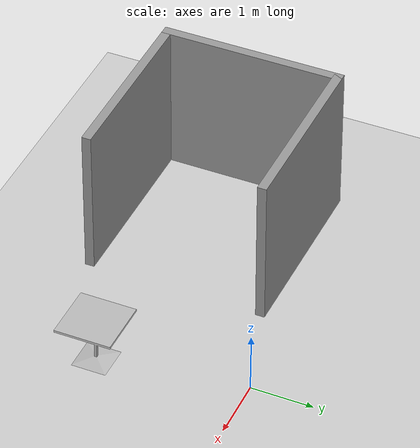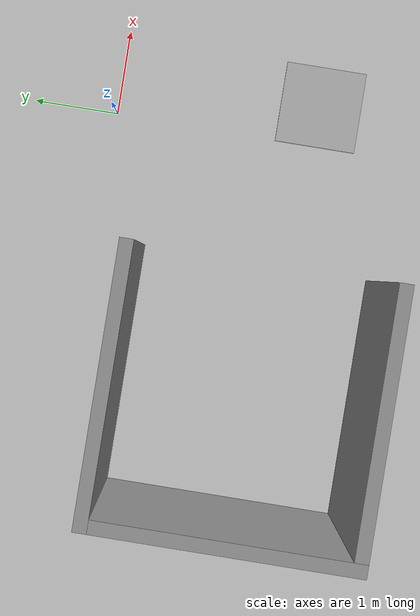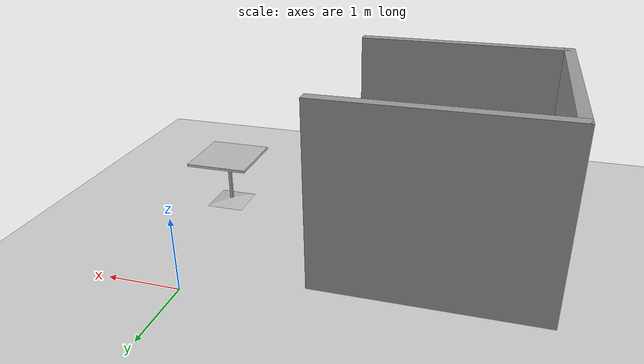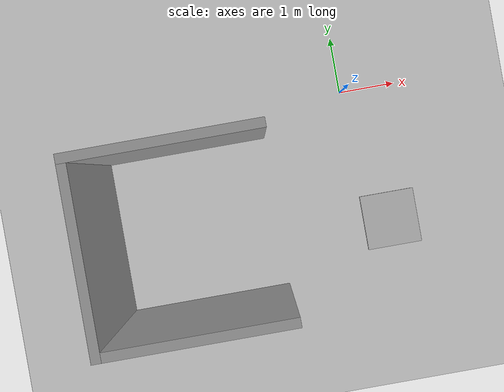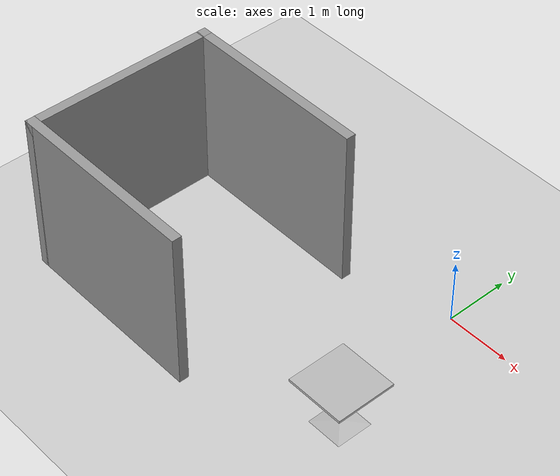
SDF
<sdf version="1.7">
 <world name="default">
  <light name="sun" type="directional">
   <pose>0 0 10 0 -0 0</pose>
   <diffuse>0.8 0.8 0.8 1</diffuse>
   <specular>0.2 0.2 0.2 1</specular>
   <attenuation>
    <range>1000</range>
    <constant>0.9</constant>
    <linear>0.01</linear>
    <quadratic>0.001</quadratic>
   </attenuation>
   <direction>-0.5 0.1 -0.9</direction>
   <spot><inner_angle>0</inner_angle><outer_angle>0</outer_angle><falloff>0</falloff></spot>
  </light>
  <model name="ground_plane">
   <static>1</static>
   <link name="link">
    <collision name="collision">
     <geometry><plane><normal>0 0 1</normal><size>100 100</size></plane></geometry>
     <surface>
      <contact><collide_bitmask>65535</collide_bitmask></contact>
      <friction><ode><mu>100</mu><mu2>50</mu2></ode></friction>
     </surface>
    </collision>
    <visual name="visual">
     <cast_shadows>0</cast_shadows>
     <geometry><plane><normal>0 0 1</normal><size>100 100</size></plane></geometry>
     <material>
      <script><uri>file://media/materials/scripts/gazebo.material</uri><name>Gazebo/Grey</name></script>
     </material>
    </visual>
   </link>
  </model>
  <gravity>0 0 -9.8</gravity>
  <magnetic_field>6e-06 2.3e-05 -4.2e-05</magnetic_field>
  <atmosphere type="adiabatic"/>
  <physics type="ode">
   <max_step_size>0.001</max_step_size>
   <real_time_factor>1</real_time_factor>
   <real_time_update_rate>1000</real_time_update_rate>
  </physics>
  <scene><ambient>0.4 0.4 0.4 1</ambient><background>0.7 0.7 0.7 1</background><shadows>1</shadows></scene>
  <audio><device>default</device></audio>
  <spherical_coordinates>
   <surface_model>EARTH_WGS84</surface_model>
   <latitude_deg>0</latitude_deg>
   <longitude_deg>0</longitude_deg>
   <elevation>0</elevation>
   <heading_deg>0</heading_deg>
  </spherical_coordinates>
  <model name="cafe_table">
   <static>1</static>
   <link name="link">
    <collision name="surface">
     <pose>0 0 0.755 0 -0 0</pose>
     <geometry><box><size>0.913 0.913 0.04</size></box></geometry>
    </collision>
    <collision name="column">
     <pose>0 0 0.37 0 -0 0</pose>
     <geometry><box><size>0.042 0.042 0.74</size></box></geometry>
    </collision>
    <collision name="base">
     <pose>0 0 0.02 0 -0 0</pose>
     <geometry><box><size>0.56 0.56 0.04</size></box></geometry>
    </collision>
    <visual name="visual">
     <geometry><mesh><uri>model://cafe_table/meshes/cafe_table.dae</uri></mesh></geometry>
    </visual>
   </link>
   <pose>0.353201 -2.34885 0 0 -0 0</pose>
  </model>
  <model name="room">
   <pose>-1.59736 -1.2717 0 0 -0 0</pose>
   <link name="Wall_0">
    <collision name="Wall_0_Collision">
     <geometry><box><size>3 0.15 2.5</size></box></geometry>
     <pose>0 0 1.25 0 -0 0</pose>
    </collision>
    <visual name="Wall_0_Visual">
     <pose>0 0 1.25 0 -0 0</pose>
     <geometry><box><size>3 0.15 2.5</size></box></geometry>
     <material>
      <script><uri>file://media/materials/scripts/gazebo.material</uri><name>Gazebo/Grey</name></script>
      <ambient>1 1 1 1</ambient>
     </material>
     <meta><layer>0</layer></meta>
    </visual>
    <pose>-1.4125 0.7675 0 0 -0 3.14159</pose>
   </link>
   <link name="Wall_1">
    <collision name="Wall_1_Collision">
     <geometry><box><size>3 0.15 2.5</size></box></geometry>
     <pose>0 0 1.25 0 -0 0</pose>
    </collision>
    <visual name="Wall_1_Visual">
     <pose>0 0 1.25 0 -0 0</pose>
     <geometry><box><size>3 0.15 2.5</size></box></geometry>
     <material>
      <script><uri>file://media/materials/scripts/gazebo.material</uri><name>Gazebo/Grey</name></script>
      <ambient>1 1 1 1</ambient>
     </material>
     <meta><layer>0</layer></meta>
    </visual>
    <pose>-2.8375 -0.6575 0 0 -0 -1.5708</pose>
   </link>
   <link name="Wall_2">
    <collision name="Wall_2_Collision">
     <geometry><box><size>3 0.15 2.5</size></box></geometry>
     <pose>0 0 1.25 0 -0 0</pose>
    </collision>
    <visual name="Wall_2_Visual">
     <pose>0 0 1.25 0 -0 0</pose>
     <geometry><box><size>3 0.15 2.5</size></box></geometry>
     <material>
      <script><uri>file://media/materials/scripts/gazebo.material</uri><name>Gazebo/Grey</name></script>
      <ambient>1 1 1 1</ambient>
     </material>
     <meta><layer>0</layer></meta>
    </visual>
    <pose>-1.4125 -2.0825 0 0 -0 0</pose>
   </link>
   <static>1</static>
  </model>
 </world>
</sdf>
